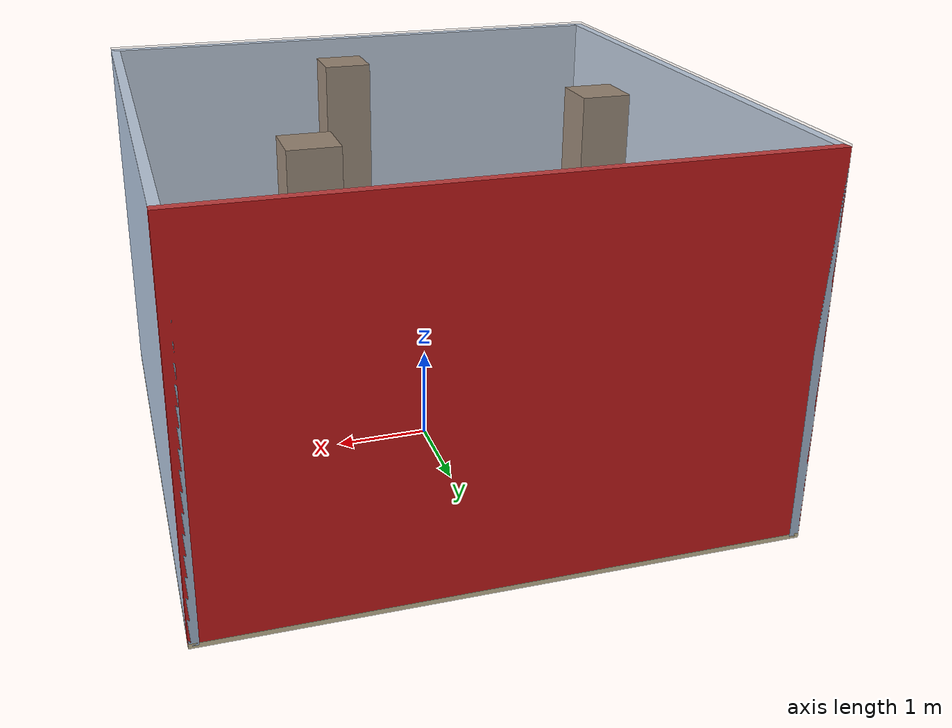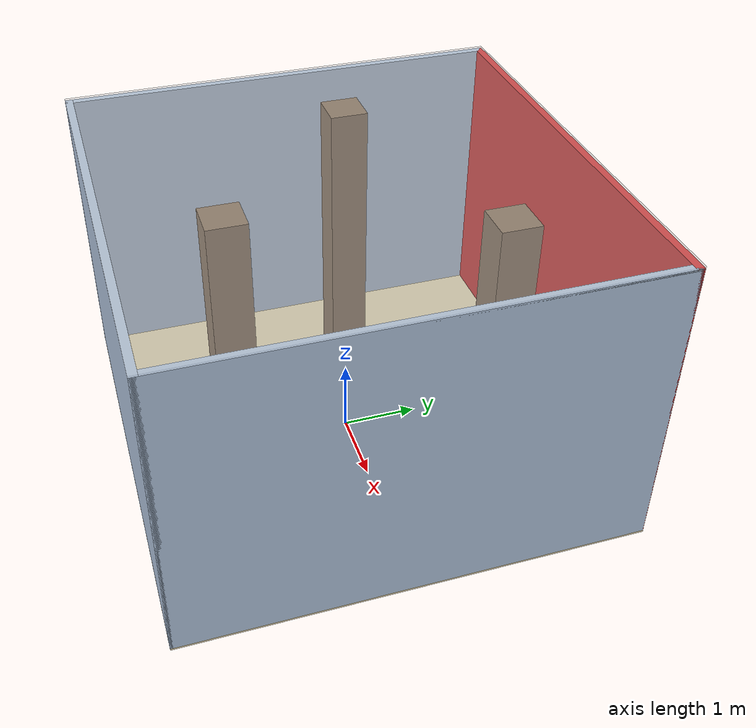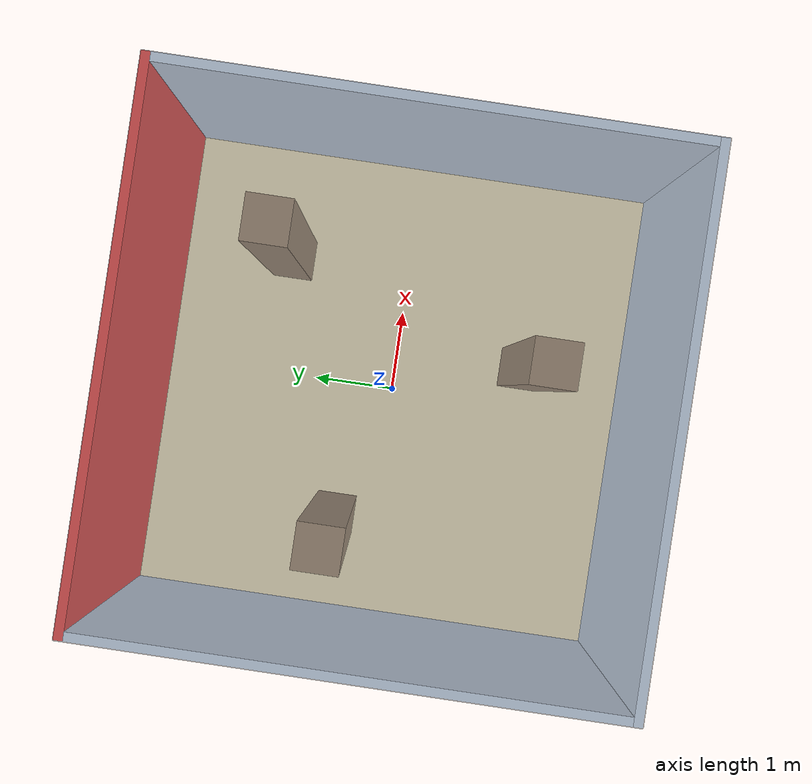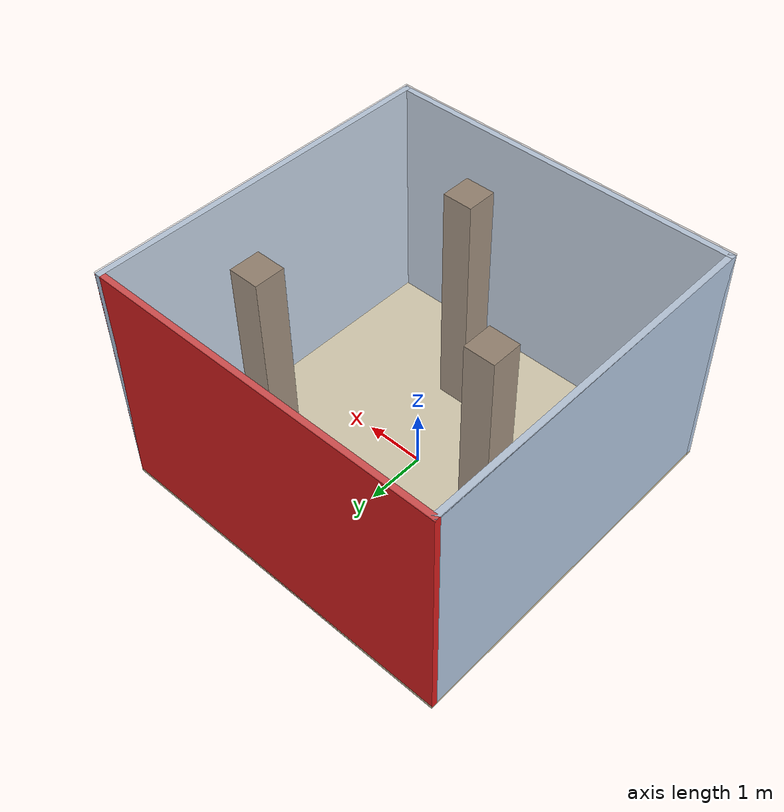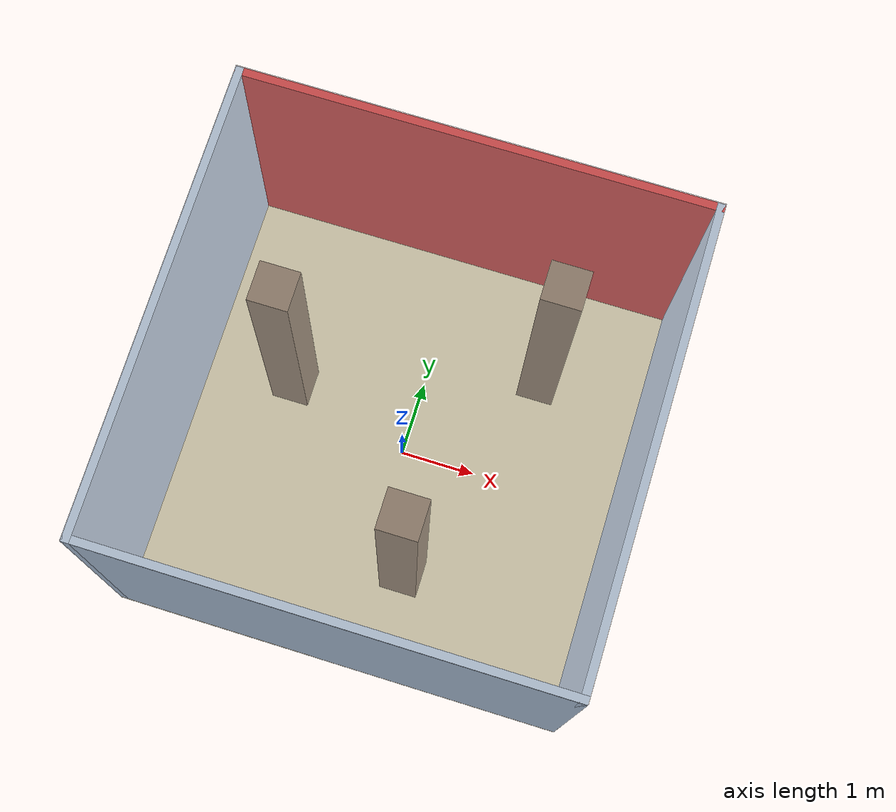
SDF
<sdf version="1.9">
 <world name="rl_room_multi_pillar">
  <physics name="1ms" type="ignored">
   <max_step_size>0.001</max_step_size>
   <real_time_factor>1.0</real_time_factor>
  </physics>
  <plugin filename="gz-sim-physics-system" name="gz::sim::systems::Physics"/>
  <plugin filename="gz-sim-scene-broadcaster-system" name="gz::sim::systems::SceneBroadcaster"/>
  <plugin filename="gz-sim-user-commands-system" name="gz::sim::systems::UserCommands"/>
  <plugin filename="gz-sim-sensors-system" name="gz::sim::systems::Sensors">
   <render_engine>ogre2</render_engine>
  </plugin>
  <plugin filename="gz-sim-imu-system" name="gz::sim::systems::Imu"/>
  <plugin filename="gz-sim-navsat-system" name="gz::sim::systems::NavSat"/>
  <spherical_coordinates>
   <latitude_deg>-35.363262</latitude_deg>
   <longitude_deg>149.165237</longitude_deg>
   <elevation>584.0</elevation>
   <heading_deg>0</heading_deg>
   <surface_model>EARTH_WGS84</surface_model>
  </spherical_coordinates>
  <light type="directional" name="main_light">
   <cast_shadows>false</cast_shadows>
   <pose>0 0 10 0 0 0</pose>
   <diffuse>1.0 1.0 1.0 1</diffuse>
   <specular>0.5 0.5 0.5 1</specular>
   <direction>0.1 0.1 -1</direction>
  </light>
  <model name="floor">
   <static>true</static>
   <link name="link">
    <collision name="c"><geometry><box><size>6.0 6.0 0.05</size></box></geometry></collision>
    <visual name="v">
     <geometry><box><size>6.0 6.0 0.05</size></box></geometry>
     <material>
      <ambient>0.85 0.80 0.65 1</ambient>
      <diffuse>0.85 0.80 0.65 1</diffuse>
      <specular>0.1 0.1 0.1 1</specular>
     </material>
    </visual>
   </link>
  </model>
  <model name="ceiling">
   <static>true</static>
   <link name="ceiling_link">
    <collision name="ceiling_col">
     <pose>0 0 4.0 0 0 0</pose>
     <geometry><box><size>6.0 6.0 0.05</size></box></geometry>
    </collision>
    <visual name="ceiling_vis">
     <pose>0 0 4.0 0 0 0</pose>
     <geometry><box><size>6.0 6.0 0.05</size></box></geometry>
     <material><ambient>0.8 0.8 0.8 0.3</ambient><diffuse>0.8 0.8 0.8 0.3</diffuse></material>
    </visual>
   </link>
  </model>
  <model name="wall_north">
   <static>true</static>
   <pose>0.0 2.95 2.0 0 0 0</pose>
   <link name="link">
    <collision name="c"><geometry><box><size>6.0 0.1 4.0</size></box></geometry></collision>
    <visual name="v">
     <geometry><box><size>6.0 0.1 4.0</size></box></geometry>
     <material><ambient>0.85 0.12 0.12 1</ambient><diffuse>0.85 0.12 0.12 1</diffuse></material>
    </visual>
   </link>
  </model>
  <model name="wall_south">
   <static>true</static>
   <pose>0.0 -2.95 2.0 0 0 0</pose>
   <link name="link">
    <collision name="c"><geometry><box><size>6.0 0.1 4.0</size></box></geometry></collision>
    <visual name="v">
     <geometry><box><size>6.0 0.1 4.0</size></box></geometry>
     <material><ambient>0.7 0.78 0.88 1</ambient><diffuse>0.7 0.78 0.88 1</diffuse></material>
    </visual>
   </link>
  </model>
  <model name="wall_east">
   <static>true</static>
   <pose>2.95 0.0 2.0 0 0 0</pose>
   <link name="link">
    <collision name="c"><geometry><box><size>0.1 6.0 4.0</size></box></geometry></collision>
    <visual name="v">
     <geometry><box><size>0.1 6.0 4.0</size></box></geometry>
     <material><ambient>0.7 0.78 0.88 1</ambient><diffuse>0.7 0.78 0.88 1</diffuse></material>
    </visual>
   </link>
  </model>
  <model name="wall_west">
   <static>true</static>
   <pose>-2.95 0.0 2.0 0 0 0</pose>
   <link name="link">
    <collision name="c"><geometry><box><size>0.1 6.0 4.0</size></box></geometry></collision>
    <visual name="v">
     <geometry><box><size>0.1 6.0 4.0</size></box></geometry>
     <material><ambient>0.7 0.78 0.88 1</ambient><diffuse>0.7 0.78 0.88 1</diffuse></material>
    </visual>
   </link>
  </model>
  <model name="pillar_1">
   <static>true</static>
   <pose>1.5 1.5 2.0 0 0 0</pose>
   <link name="link">
    <collision name="c"><geometry><box><size>0.5 0.5 4.0</size></box></geometry></collision>
    <visual name="v">
     <geometry><box><size>0.5 0.5 4.0</size></box></geometry>
     <material><ambient>0.5 0.4 0.3 1</ambient><diffuse>0.5 0.4 0.3 1</diffuse></material>
    </visual>
   </link>
  </model>
  <model name="pillar_2">
   <static>true</static>
   <pose>-1.7 0.5 2.0 0 0 0</pose>
   <link name="link">
    <collision name="c"><geometry><box><size>0.5 0.5 4.0</size></box></geometry></collision>
    <visual name="v">
     <geometry><box><size>0.5 0.5 4.0</size></box></geometry>
     <material><ambient>0.5 0.4 0.3 1</ambient><diffuse>0.5 0.4 0.3 1</diffuse></material>
    </visual>
   </link>
  </model>
  <model name="pillar_3">
   <static>true</static>
   <pose>0.5 -1.6 2.0 0 0 0</pose>
   <link name="link">
    <collision name="c"><geometry><box><size>0.5 0.5 4.0</size></box></geometry></collision>
    <visual name="v">
     <geometry><box><size>0.5 0.5 4.0</size></box></geometry>
     <material><ambient>0.5 0.4 0.3 1</ambient><diffuse>0.5 0.4 0.3 1</diffuse></material>
    </visual>
   </link>
  </model>
 </world>
</sdf>
